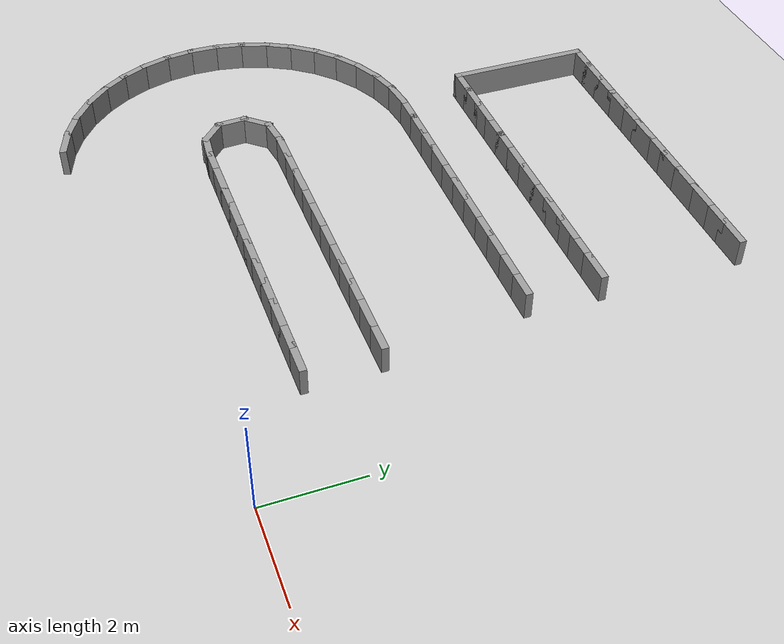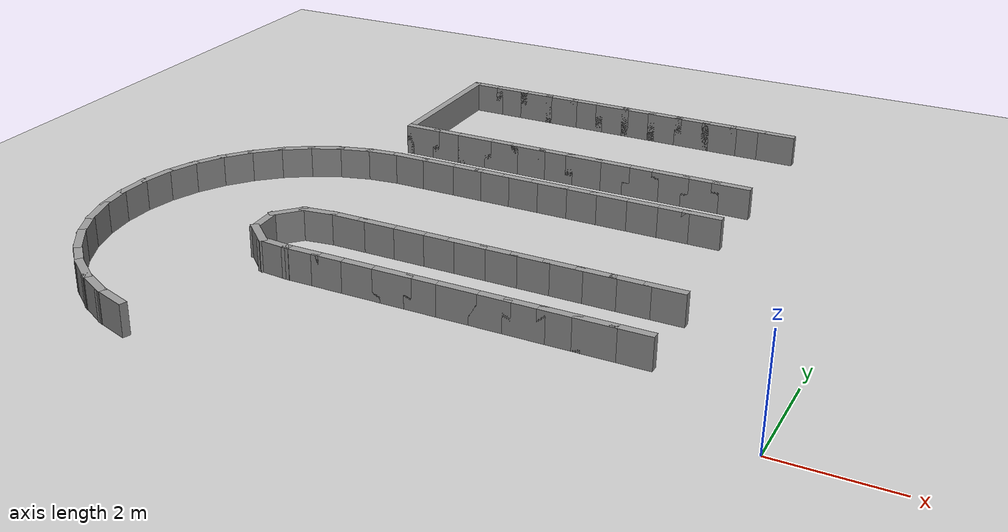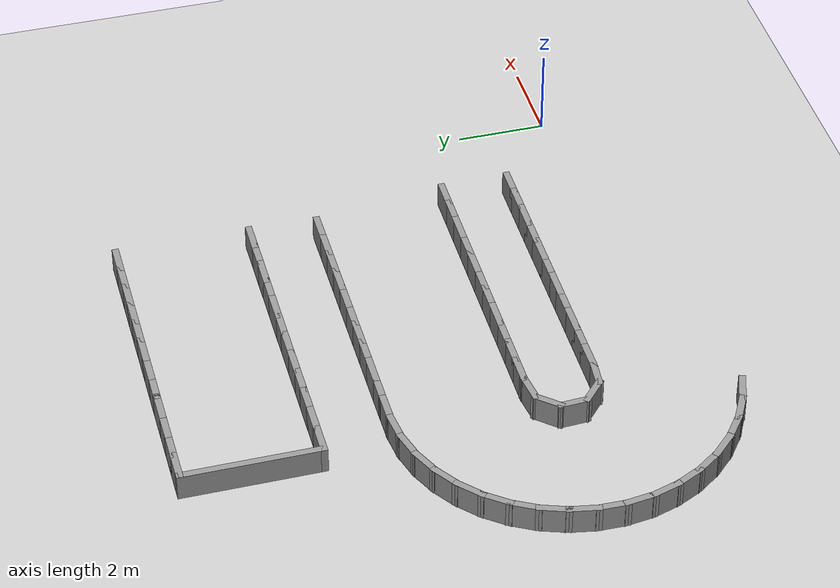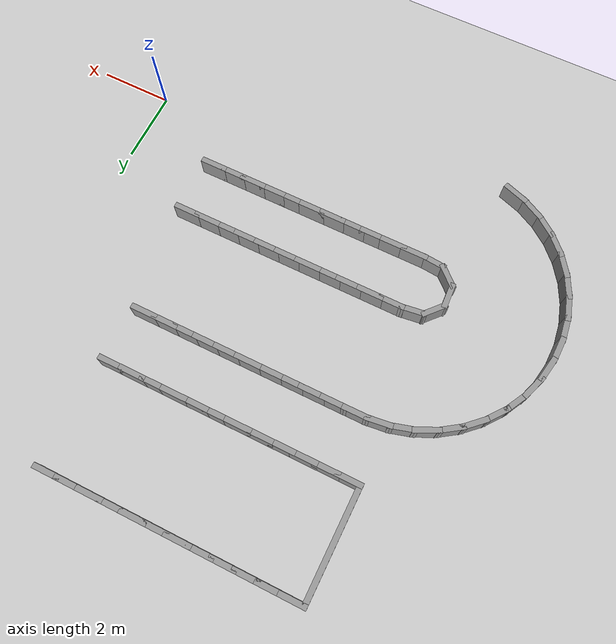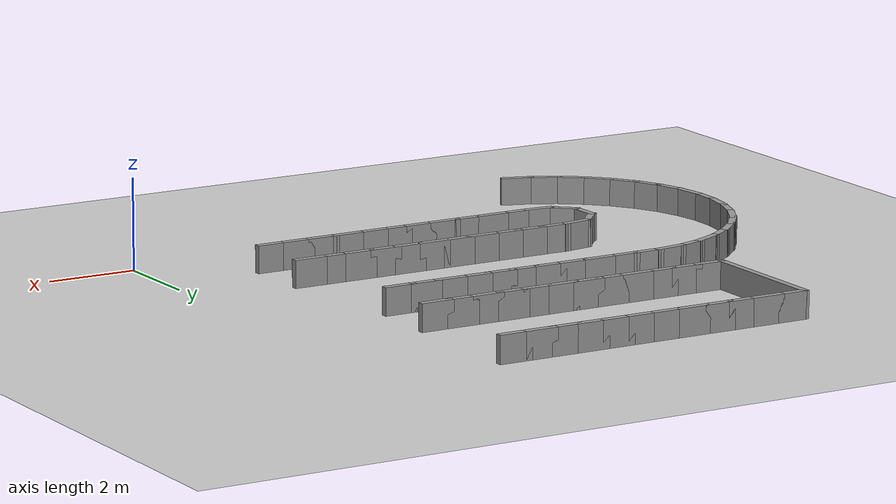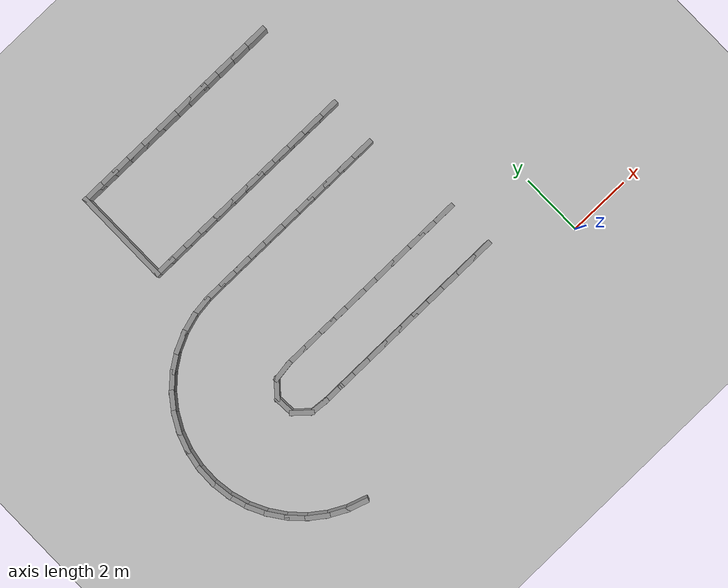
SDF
<sdf version="1.7">
 <world name="default">
  <model name="ground_plane">
   <static>1</static>
   <link name="link">
    <collision name="collision">
     <geometry><plane><normal>0 0 1</normal><size>100 100</size></plane></geometry>
     <surface><friction><ode><mu>100</mu><mu2>50</mu2></ode></friction></surface>
    </collision>
    <visual name="visual">
     <cast_shadows>0</cast_shadows>
     <geometry><plane><normal>0 0 1</normal><size>100 100</size></plane></geometry>
     <material>
      <script><uri>file://media/materials/scripts/gazebo.material</uri><name>Gazebo/Grey</name></script>
     </material>
    </visual>
   </link>
  </model>
  <model name="rand_serp_02">
   <link name="Wall_0">
    <collision name="Wall_0_Collision">
     <geometry><box><size>0.7500 0.1500 0.6000</size></box></geometry>
     <pose>0 0 0.3000 0 -0 0</pose>
    </collision>
    <visual name="Wall_0_Visual">
     <pose>0 0 0.3000 0 -0 0</pose>
     <geometry><box><size>0.7500 0.1500 0.6000</size></box></geometry>
     <material>
      <script><uri>file://media/materials/scripts/gazebo.material</uri><name>Gazebo/Grey</name></script>
      <ambient>1 1 1 1</ambient>
     </material>
    </visual>
    <pose>-9.4659 10.6147 0 0 -0 0.00000</pose>
   </link>
   <link name="Wall_1">
    <collision name="Wall_1_Collision">
     <geometry><box><size>0.7500 0.1500 0.6000</size></box></geometry>
     <pose>0 0 0.3000 0 -0 0</pose>
    </collision>
    <visual name="Wall_1_Visual">
     <pose>0 0 0.3000 0 -0 0</pose>
     <geometry><box><size>0.7500 0.1500 0.6000</size></box></geometry>
     <material>
      <script><uri>file://media/materials/scripts/gazebo.material</uri><name>Gazebo/Grey</name></script>
      <ambient>1 1 1 1</ambient>
     </material>
    </visual>
    <pose>-8.8659 10.6147 0 0 -0 0.00000</pose>
   </link>
   <link name="Wall_2">
    <collision name="Wall_2_Collision">
     <geometry><box><size>0.7500 0.1500 0.6000</size></box></geometry>
     <pose>0 0 0.3000 0 -0 0</pose>
    </collision>
    <visual name="Wall_2_Visual">
     <pose>0 0 0.3000 0 -0 0</pose>
     <geometry><box><size>0.7500 0.1500 0.6000</size></box></geometry>
     <material>
      <script><uri>file://media/materials/scripts/gazebo.material</uri><name>Gazebo/Grey</name></script>
      <ambient>1 1 1 1</ambient>
     </material>
    </visual>
    <pose>-8.2659 10.6147 0 0 -0 0.00000</pose>
   </link>
   <link name="Wall_3">
    <collision name="Wall_3_Collision">
     <geometry><box><size>0.7500 0.1500 0.6000</size></box></geometry>
     <pose>0 0 0.3000 0 -0 0</pose>
    </collision>
    <visual name="Wall_3_Visual">
     <pose>0 0 0.3000 0 -0 0</pose>
     <geometry><box><size>0.7500 0.1500 0.6000</size></box></geometry>
     <material>
      <script><uri>file://media/materials/scripts/gazebo.material</uri><name>Gazebo/Grey</name></script>
      <ambient>1 1 1 1</ambient>
     </material>
    </visual>
    <pose>-7.6659 10.6147 0 0 -0 0.00000</pose>
   </link>
   <link name="Wall_4">
    <collision name="Wall_4_Collision">
     <geometry><box><size>0.7500 0.1500 0.6000</size></box></geometry>
     <pose>0 0 0.3000 0 -0 0</pose>
    </collision>
    <visual name="Wall_4_Visual">
     <pose>0 0 0.3000 0 -0 0</pose>
     <geometry><box><size>0.7500 0.1500 0.6000</size></box></geometry>
     <material>
      <script><uri>file://media/materials/scripts/gazebo.material</uri><name>Gazebo/Grey</name></script>
      <ambient>1 1 1 1</ambient>
     </material>
    </visual>
    <pose>-7.0659 10.6147 0 0 -0 0.00000</pose>
   </link>
   <link name="Wall_5">
    <collision name="Wall_5_Collision">
     <geometry><box><size>0.7500 0.1500 0.6000</size></box></geometry>
     <pose>0 0 0.3000 0 -0 0</pose>
    </collision>
    <visual name="Wall_5_Visual">
     <pose>0 0 0.3000 0 -0 0</pose>
     <geometry><box><size>0.7500 0.1500 0.6000</size></box></geometry>
     <material>
      <script><uri>file://media/materials/scripts/gazebo.material</uri><name>Gazebo/Grey</name></script>
      <ambient>1 1 1 1</ambient>
     </material>
    </visual>
    <pose>-6.4659 10.6147 0 0 -0 0.00000</pose>
   </link>
   <link name="Wall_6">
    <collision name="Wall_6_Collision">
     <geometry><box><size>0.7500 0.1500 0.6000</size></box></geometry>
     <pose>0 0 0.3000 0 -0 0</pose>
    </collision>
    <visual name="Wall_6_Visual">
     <pose>0 0 0.3000 0 -0 0</pose>
     <geometry><box><size>0.7500 0.1500 0.6000</size></box></geometry>
     <material>
      <script><uri>file://media/materials/scripts/gazebo.material</uri><name>Gazebo/Grey</name></script>
      <ambient>1 1 1 1</ambient>
     </material>
    </visual>
    <pose>-5.8659 10.6147 0 0 -0 0.00000</pose>
   </link>
   <link name="Wall_7">
    <collision name="Wall_7_Collision">
     <geometry><box><size>0.7500 0.1500 0.6000</size></box></geometry>
     <pose>0 0 0.3000 0 -0 0</pose>
    </collision>
    <visual name="Wall_7_Visual">
     <pose>0 0 0.3000 0 -0 0</pose>
     <geometry><box><size>0.7500 0.1500 0.6000</size></box></geometry>
     <material>
      <script><uri>file://media/materials/scripts/gazebo.material</uri><name>Gazebo/Grey</name></script>
      <ambient>1 1 1 1</ambient>
     </material>
    </visual>
    <pose>-5.2659 10.6147 0 0 -0 0.00000</pose>
   </link>
   <link name="Wall_8">
    <collision name="Wall_8_Collision">
     <geometry><box><size>0.7500 0.1500 0.6000</size></box></geometry>
     <pose>0 0 0.3000 0 -0 0</pose>
    </collision>
    <visual name="Wall_8_Visual">
     <pose>0 0 0.3000 0 -0 0</pose>
     <geometry><box><size>0.7500 0.1500 0.6000</size></box></geometry>
     <material>
      <script><uri>file://media/materials/scripts/gazebo.material</uri><name>Gazebo/Grey</name></script>
      <ambient>1 1 1 1</ambient>
     </material>
    </visual>
    <pose>-4.6659 10.6147 0 0 -0 0.00000</pose>
   </link>
   <link name="Wall_9">
    <collision name="Wall_9_Collision">
     <geometry><box><size>0.7500 0.1500 0.6000</size></box></geometry>
     <pose>0 0 0.3000 0 -0 0</pose>
    </collision>
    <visual name="Wall_9_Visual">
     <pose>0 0 0.3000 0 -0 0</pose>
     <geometry><box><size>0.7500 0.1500 0.6000</size></box></geometry>
     <material>
      <script><uri>file://media/materials/scripts/gazebo.material</uri><name>Gazebo/Grey</name></script>
      <ambient>1 1 1 1</ambient>
     </material>
    </visual>
    <pose>-4.0659 10.6147 0 0 -0 0.00000</pose>
   </link>
   <link name="Wall_10">
    <collision name="Wall_10_Collision">
     <geometry><box><size>0.7500 0.1500 0.6000</size></box></geometry>
     <pose>0 0 0.3000 0 -0 0</pose>
    </collision>
    <visual name="Wall_10_Visual">
     <pose>0 0 0.3000 0 -0 0</pose>
     <geometry><box><size>0.7500 0.1500 0.6000</size></box></geometry>
     <material>
      <script><uri>file://media/materials/scripts/gazebo.material</uri><name>Gazebo/Grey</name></script>
      <ambient>1 1 1 1</ambient>
     </material>
    </visual>
    <pose>-3.4659 10.6147 0 0 -0 0.00000</pose>
   </link>
   <link name="Wall_11">
    <collision name="Wall_11_Collision">
     <geometry><box><size>0.7500 0.1500 0.6000</size></box></geometry>
     <pose>0 0 0.3000 0 -0 0</pose>
    </collision>
    <visual name="Wall_11_Visual">
     <pose>0 0 0.3000 0 -0 0</pose>
     <geometry><box><size>0.7500 0.1500 0.6000</size></box></geometry>
     <material>
      <script><uri>file://media/materials/scripts/gazebo.material</uri><name>Gazebo/Grey</name></script>
      <ambient>1 1 1 1</ambient>
     </material>
    </visual>
    <pose>-2.8659 10.6147 0 0 -0 0.00000</pose>
   </link>
   <link name="Wall_70">
    <collision name="Wall_70_Collision">
     <geometry><box><size>0.7500 0.1500 0.6000</size></box></geometry>
     <pose>0 0 0.3000 0 -0 0</pose>
    </collision>
    <visual name="Wall_70_Visual">
     <pose>0 0 0.3000 0 -0 0</pose>
     <geometry><box><size>0.7500 0.1500 0.6000</size></box></geometry>
     <material>
      <script><uri>file://media/materials/scripts/gazebo.material</uri><name>Gazebo/Grey</name></script>
      <ambient>1 1 1 1</ambient>
     </material>
    </visual>
    <pose>-2.5167 3.0475 0 0 -0 3.14159</pose>
   </link>
   <link name="Wall_71">
    <collision name="Wall_71_Collision">
     <geometry><box><size>0.7500 0.1500 0.6000</size></box></geometry>
     <pose>0 0 0.3000 0 -0 0</pose>
    </collision>
    <visual name="Wall_71_Visual">
     <pose>0 0 0.3000 0 -0 0</pose>
     <geometry><box><size>0.7500 0.1500 0.6000</size></box></geometry>
     <material>
      <script><uri>file://media/materials/scripts/gazebo.material</uri><name>Gazebo/Grey</name></script>
      <ambient>1 1 1 1</ambient>
     </material>
    </visual>
    <pose>-3.1167 3.0475 0 0 -0 3.14159</pose>
   </link>
   <link name="Wall_72">
    <collision name="Wall_72_Collision">
     <geometry><box><size>0.7500 0.1500 0.6000</size></box></geometry>
     <pose>0 0 0.3000 0 -0 0</pose>
    </collision>
    <visual name="Wall_72_Visual">
     <pose>0 0 0.3000 0 -0 0</pose>
     <geometry><box><size>0.7500 0.1500 0.6000</size></box></geometry>
     <material>
      <script><uri>file://media/materials/scripts/gazebo.material</uri><name>Gazebo/Grey</name></script>
      <ambient>1 1 1 1</ambient>
     </material>
    </visual>
    <pose>-3.7167 3.0475 0 0 -0 3.14159</pose>
   </link>
   <link name="Wall_73">
    <collision name="Wall_73_Collision">
     <geometry><box><size>0.7500 0.1500 0.6000</size></box></geometry>
     <pose>0 0 0.3000 0 -0 0</pose>
    </collision>
    <visual name="Wall_73_Visual">
     <pose>0 0 0.3000 0 -0 0</pose>
     <geometry><box><size>0.7500 0.1500 0.6000</size></box></geometry>
     <material>
      <script><uri>file://media/materials/scripts/gazebo.material</uri><name>Gazebo/Grey</name></script>
      <ambient>1 1 1 1</ambient>
     </material>
    </visual>
    <pose>-4.3167 3.0475 0 0 -0 3.14159</pose>
   </link>
   <link name="Wall_74">
    <collision name="Wall_74_Collision">
     <geometry><box><size>0.7500 0.1500 0.6000</size></box></geometry>
     <pose>0 0 0.3000 0 -0 0</pose>
    </collision>
    <visual name="Wall_74_Visual">
     <pose>0 0 0.3000 0 -0 0</pose>
     <geometry><box><size>0.7500 0.1500 0.6000</size></box></geometry>
     <material>
      <script><uri>file://media/materials/scripts/gazebo.material</uri><name>Gazebo/Grey</name></script>
      <ambient>1 1 1 1</ambient>
     </material>
    </visual>
    <pose>-4.9167 3.0475 0 0 -0 3.14159</pose>
   </link>
   <link name="Wall_75">
    <collision name="Wall_75_Collision">
     <geometry><box><size>0.7500 0.1500 0.6000</size></box></geometry>
     <pose>0 0 0.3000 0 -0 0</pose>
    </collision>
    <visual name="Wall_75_Visual">
     <pose>0 0 0.3000 0 -0 0</pose>
     <geometry><box><size>0.7500 0.1500 0.6000</size></box></geometry>
     <material>
      <script><uri>file://media/materials/scripts/gazebo.material</uri><name>Gazebo/Grey</name></script>
      <ambient>1 1 1 1</ambient>
     </material>
    </visual>
    <pose>-5.5167 3.0475 0 0 -0 3.14159</pose>
   </link>
   <link name="Wall_76">
    <collision name="Wall_76_Collision">
     <geometry><box><size>0.7500 0.1500 0.6000</size></box></geometry>
     <pose>0 0 0.3000 0 -0 0</pose>
    </collision>
    <visual name="Wall_76_Visual">
     <pose>0 0 0.3000 0 -0 0</pose>
     <geometry><box><size>0.7500 0.1500 0.6000</size></box></geometry>
     <material>
      <script><uri>file://media/materials/scripts/gazebo.material</uri><name>Gazebo/Grey</name></script>
      <ambient>1 1 1 1</ambient>
     </material>
    </visual>
    <pose>-6.1167 3.0475 0 0 -0 3.14159</pose>
   </link>
   <link name="Wall_77">
    <collision name="Wall_77_Collision">
     <geometry><box><size>0.7500 0.1500 0.6000</size></box></geometry>
     <pose>0 0 0.3000 0 -0 0</pose>
    </collision>
    <visual name="Wall_77_Visual">
     <pose>0 0 0.3000 0 -0 0</pose>
     <geometry><box><size>0.7500 0.1500 0.6000</size></box></geometry>
     <material>
      <script><uri>file://media/materials/scripts/gazebo.material</uri><name>Gazebo/Grey</name></script>
      <ambient>1 1 1 1</ambient>
     </material>
    </visual>
    <pose>-6.7167 3.0475 0 0 -0 3.14159</pose>
   </link>
   <link name="Wall_78">
    <collision name="Wall_78_Collision">
     <geometry><box><size>0.7500 0.1500 0.6000</size></box></geometry>
     <pose>0 0 0.3000 0 -0 0</pose>
    </collision>
    <visual name="Wall_78_Visual">
     <pose>0 0 0.3000 0 -0 0</pose>
     <geometry><box><size>0.7500 0.1500 0.6000</size></box></geometry>
     <material>
      <script><uri>file://media/materials/scripts/gazebo.material</uri><name>Gazebo/Grey</name></script>
      <ambient>1 1 1 1</ambient>
     </material>
    </visual>
    <pose>-7.3167 3.0475 0 0 -0 3.14159</pose>
   </link>
   <link name="Wall_79">
    <collision name="Wall_79_Collision">
     <geometry><box><size>0.7500 0.1500 0.6000</size></box></geometry>
     <pose>0 0 0.3000 0 -0 0</pose>
    </collision>
    <visual name="Wall_79_Visual">
     <pose>0 0 0.3000 0 -0 0</pose>
     <geometry><box><size>0.7500 0.1500 0.6000</size></box></geometry>
     <material>
      <script><uri>file://media/materials/scripts/gazebo.material</uri><name>Gazebo/Grey</name></script>
      <ambient>1 1 1 1</ambient>
     </material>
    </visual>
    <pose>-7.9167 3.0475 0 0 -0 3.14159</pose>
   </link>
   <link name="Wall_80">
    <collision name="Wall_80_Collision">
     <geometry><box><size>0.7500 0.1500 0.6000</size></box></geometry>
     <pose>0 0 0.3000 0 -0 0</pose>
    </collision>
    <visual name="Wall_80_Visual">
     <pose>0 0 0.3000 0 -0 0</pose>
     <geometry><box><size>0.7500 0.1500 0.6000</size></box></geometry>
     <material>
      <script><uri>file://media/materials/scripts/gazebo.material</uri><name>Gazebo/Grey</name></script>
      <ambient>1 1 1 1</ambient>
     </material>
    </visual>
    <pose>-8.5167 3.0475 0 0 -0 3.14159</pose>
   </link>
   <link name="Wall_81">
    <collision name="Wall_81_Collision">
     <geometry><box><size>0.7432 0.1500 0.6000</size></box></geometry>
     <pose>0 0 0.3000 0 -0 0</pose>
    </collision>
    <visual name="Wall_81_Visual">
     <pose>0 0 0.3000 0 -0 0</pose>
     <geometry><box><size>0.7432 0.1500 0.6000</size></box></geometry>
     <material>
      <script><uri>file://media/materials/scripts/gazebo.material</uri><name>Gazebo/Grey</name></script>
      <ambient>1 1 1 1</ambient>
     </material>
    </visual>
    <pose>-9.1106 3.0081 0 0 -0 -3.00864</pose>
   </link>
   <link name="Wall_82">
    <collision name="Wall_82_Collision">
     <geometry><box><size>0.7349 0.1500 0.6000</size></box></geometry>
     <pose>0 0 0.3000 0 -0 0</pose>
    </collision>
    <visual name="Wall_82_Visual">
     <pose>0 0 0.3000 0 -0 0</pose>
     <geometry><box><size>0.7349 0.1500 0.6000</size></box></geometry>
     <material>
      <script><uri>file://media/materials/scripts/gazebo.material</uri><name>Gazebo/Grey</name></script>
      <ambient>1 1 1 1</ambient>
     </material>
    </visual>
    <pose>-9.5988 2.7502 0 0 -0 -2.29705</pose>
   </link>
   <link name="Wall_83">
    <collision name="Wall_83_Collision">
     <geometry><box><size>0.7349 0.1500 0.6000</size></box></geometry>
     <pose>0 0 0.3000 0 -0 0</pose>
    </collision>
    <visual name="Wall_83_Visual">
     <pose>0 0 0.3000 0 -0 0</pose>
     <geometry><box><size>0.7349 0.1500 0.6000</size></box></geometry>
     <material>
      <script><uri>file://media/materials/scripts/gazebo.material</uri><name>Gazebo/Grey</name></script>
      <ambient>1 1 1 1</ambient>
     </material>
    </visual>
    <pose>-9.7776 2.2394 0 0 -0 -1.51783</pose>
   </link>
   <link name="Wall_84">
    <collision name="Wall_84_Collision">
     <geometry><box><size>0.7349 0.1500 0.6000</size></box></geometry>
     <pose>0 0 0.3000 0 -0 0</pose>
    </collision>
    <visual name="Wall_84_Visual">
     <pose>0 0 0.3000 0 -0 0</pose>
     <geometry><box><size>0.7349 0.1500 0.6000</size></box></geometry>
     <material>
      <script><uri>file://media/materials/scripts/gazebo.material</uri><name>Gazebo/Grey</name></script>
      <ambient>1 1 1 1</ambient>
     </material>
    </visual>
    <pose>-9.5460 1.7504 0 0 -0 -0.73927</pose>
   </link>
   <link name="Wall_85">
    <collision name="Wall_85_Collision">
     <geometry><box><size>0.6867 0.1500 0.6000</size></box></geometry>
     <pose>0 0 0.3000 0 -0 0</pose>
    </collision>
    <visual name="Wall_85_Visual">
     <pose>0 0 0.3000 0 -0 0</pose>
     <geometry><box><size>0.6867 0.1500 0.6000</size></box></geometry>
     <material>
      <script><uri>file://media/materials/scripts/gazebo.material</uri><name>Gazebo/Grey</name></script>
      <ambient>1 1 1 1</ambient>
     </material>
    </visual>
    <pose>-9.0626 1.5300 0 0 -0 -0.08722</pose>
   </link>
   <link name="Wall_86">
    <collision name="Wall_86_Collision">
     <geometry><box><size>0.7500 0.1500 0.6000</size></box></geometry>
     <pose>0 0 0.3000 0 -0 0</pose>
    </collision>
    <visual name="Wall_86_Visual">
     <pose>0 0 0.3000 0 -0 0</pose>
     <geometry><box><size>0.7500 0.1500 0.6000</size></box></geometry>
     <material>
      <script><uri>file://media/materials/scripts/gazebo.material</uri><name>Gazebo/Grey</name></script>
      <ambient>1 1 1 1</ambient>
     </material>
    </visual>
    <pose>-8.4952 1.5066 0 0 -0 0.00000</pose>
   </link>
   <link name="Wall_87">
    <collision name="Wall_87_Collision">
     <geometry><box><size>0.7500 0.1500 0.6000</size></box></geometry>
     <pose>0 0 0.3000 0 -0 0</pose>
    </collision>
    <visual name="Wall_87_Visual">
     <pose>0 0 0.3000 0 -0 0</pose>
     <geometry><box><size>0.7500 0.1500 0.6000</size></box></geometry>
     <material>
      <script><uri>file://media/materials/scripts/gazebo.material</uri><name>Gazebo/Grey</name></script>
      <ambient>1 1 1 1</ambient>
     </material>
    </visual>
    <pose>-7.8952 1.5066 0 0 -0 0.00000</pose>
   </link>
   <link name="Wall_88">
    <collision name="Wall_88_Collision">
     <geometry><box><size>0.7500 0.1500 0.6000</size></box></geometry>
     <pose>0 0 0.3000 0 -0 0</pose>
    </collision>
    <visual name="Wall_88_Visual">
     <pose>0 0 0.3000 0 -0 0</pose>
     <geometry><box><size>0.7500 0.1500 0.6000</size></box></geometry>
     <material>
      <script><uri>file://media/materials/scripts/gazebo.material</uri><name>Gazebo/Grey</name></script>
      <ambient>1 1 1 1</ambient>
     </material>
    </visual>
    <pose>-7.2952 1.5066 0 0 -0 0.00000</pose>
   </link>
   <link name="Wall_89">
    <collision name="Wall_89_Collision">
     <geometry><box><size>0.7500 0.1500 0.6000</size></box></geometry>
     <pose>0 0 0.3000 0 -0 0</pose>
    </collision>
    <visual name="Wall_89_Visual">
     <pose>0 0 0.3000 0 -0 0</pose>
     <geometry><box><size>0.7500 0.1500 0.6000</size></box></geometry>
     <material>
      <script><uri>file://media/materials/scripts/gazebo.material</uri><name>Gazebo/Grey</name></script>
      <ambient>1 1 1 1</ambient>
     </material>
    </visual>
    <pose>-6.6952 1.5066 0 0 -0 0.00000</pose>
   </link>
   <link name="Wall_90">
    <collision name="Wall_90_Collision">
     <geometry><box><size>0.7500 0.1500 0.6000</size></box></geometry>
     <pose>0 0 0.3000 0 -0 0</pose>
    </collision>
    <visual name="Wall_90_Visual">
     <pose>0 0 0.3000 0 -0 0</pose>
     <geometry><box><size>0.7500 0.1500 0.6000</size></box></geometry>
     <material>
      <script><uri>file://media/materials/scripts/gazebo.material</uri><name>Gazebo/Grey</name></script>
      <ambient>1 1 1 1</ambient>
     </material>
    </visual>
    <pose>-6.0952 1.5066 0 0 -0 0.00000</pose>
   </link>
   <link name="Wall_91">
    <collision name="Wall_91_Collision">
     <geometry><box><size>0.7500 0.1500 0.6000</size></box></geometry>
     <pose>0 0 0.3000 0 -0 0</pose>
    </collision>
    <visual name="Wall_91_Visual">
     <pose>0 0 0.3000 0 -0 0</pose>
     <geometry><box><size>0.7500 0.1500 0.6000</size></box></geometry>
     <material>
      <script><uri>file://media/materials/scripts/gazebo.material</uri><name>Gazebo/Grey</name></script>
      <ambient>1 1 1 1</ambient>
     </material>
    </visual>
    <pose>-5.4952 1.5066 0 0 -0 0.00000</pose>
   </link>
   <link name="Wall_92">
    <collision name="Wall_92_Collision">
     <geometry><box><size>0.7500 0.1500 0.6000</size></box></geometry>
     <pose>0 0 0.3000 0 -0 0</pose>
    </collision>
    <visual name="Wall_92_Visual">
     <pose>0 0 0.3000 0 -0 0</pose>
     <geometry><box><size>0.7500 0.1500 0.6000</size></box></geometry>
     <material>
      <script><uri>file://media/materials/scripts/gazebo.material</uri><name>Gazebo/Grey</name></script>
      <ambient>1 1 1 1</ambient>
     </material>
    </visual>
    <pose>-4.8952 1.5066 0 0 -0 0.00000</pose>
   </link>
   <link name="Wall_93">
    <collision name="Wall_93_Collision">
     <geometry><box><size>0.7500 0.1500 0.6000</size></box></geometry>
     <pose>0 0 0.3000 0 -0 0</pose>
    </collision>
    <visual name="Wall_93_Visual">
     <pose>0 0 0.3000 0 -0 0</pose>
     <geometry><box><size>0.7500 0.1500 0.6000</size></box></geometry>
     <material>
      <script><uri>file://media/materials/scripts/gazebo.material</uri><name>Gazebo/Grey</name></script>
      <ambient>1 1 1 1</ambient>
     </material>
    </visual>
    <pose>-4.2952 1.5066 0 0 -0 0.00000</pose>
   </link>
   <link name="Wall_94">
    <collision name="Wall_94_Collision">
     <geometry><box><size>0.7500 0.1500 0.6000</size></box></geometry>
     <pose>0 0 0.3000 0 -0 0</pose>
    </collision>
    <visual name="Wall_94_Visual">
     <pose>0 0 0.3000 0 -0 0</pose>
     <geometry><box><size>0.7500 0.1500 0.6000</size></box></geometry>
     <material>
      <script><uri>file://media/materials/scripts/gazebo.material</uri><name>Gazebo/Grey</name></script>
      <ambient>1 1 1 1</ambient>
     </material>
    </visual>
    <pose>-3.6952 1.5066 0 0 -0 0.00000</pose>
   </link>
   <link name="Wall_95">
    <collision name="Wall_95_Collision">
     <geometry><box><size>0.7500 0.1500 0.6000</size></box></geometry>
     <pose>0 0 0.3000 0 -0 0</pose>
    </collision>
    <visual name="Wall_95_Visual">
     <pose>0 0 0.3000 0 -0 0</pose>
     <geometry><box><size>0.7500 0.1500 0.6000</size></box></geometry>
     <material>
      <script><uri>file://media/materials/scripts/gazebo.material</uri><name>Gazebo/Grey</name></script>
      <ambient>1 1 1 1</ambient>
     </material>
    </visual>
    <pose>-3.0952 1.5066 0 0 -0 0.00000</pose>
   </link>
   <link name="Wall_96">
    <collision name="Wall_96_Collision">
     <geometry><box><size>0.7500 0.1500 0.6000</size></box></geometry>
     <pose>0 0 0.3000 0 -0 0</pose>
    </collision>
    <visual name="Wall_96_Visual">
     <pose>0 0 0.3000 0 -0 0</pose>
     <geometry><box><size>0.7500 0.1500 0.6000</size></box></geometry>
     <material>
      <script><uri>file://media/materials/scripts/gazebo.material</uri><name>Gazebo/Grey</name></script>
      <ambient>1 1 1 1</ambient>
     </material>
    </visual>
    <pose>-2.4952 1.5066 0 0 -0 0.00000</pose>
   </link>
   <link name="Wall_202">
    <collision name="Wall_202_Collision">
     <geometry><box><size>0.7500 0.1500 0.6000</size></box></geometry>
     <pose>0 0 0.3000 0 -0 0</pose>
    </collision>
    <visual name="Wall_202_Visual">
     <pose>0 0 0.3000 0 -0 0</pose>
     <geometry><box><size>0.7500 0.1500 0.6000</size></box></geometry>
     <material>
      <script><uri>file://media/materials/scripts/gazebo.material</uri><name>Gazebo/Grey</name></script>
      <ambient>1 1 1 1</ambient>
     </material>
    </visual>
    <pose>-9.4659 7.6015 0 0 -0 0.00000</pose>
   </link>
   <link name="Wall_203">
    <collision name="Wall_203_Collision">
     <geometry><box><size>0.7500 0.1500 0.6000</size></box></geometry>
     <pose>0 0 0.3000 0 -0 0</pose>
    </collision>
    <visual name="Wall_203_Visual">
     <pose>0 0 0.3000 0 -0 0</pose>
     <geometry><box><size>0.7500 0.1500 0.6000</size></box></geometry>
     <material>
      <script><uri>file://media/materials/scripts/gazebo.material</uri><name>Gazebo/Grey</name></script>
      <ambient>1 1 1 1</ambient>
     </material>
    </visual>
    <pose>-8.8659 7.6015 0 0 -0 0.00000</pose>
   </link>
   <link name="Wall_204">
    <collision name="Wall_204_Collision">
     <geometry><box><size>0.7500 0.1500 0.6000</size></box></geometry>
     <pose>0 0 0.3000 0 -0 0</pose>
    </collision>
    <visual name="Wall_204_Visual">
     <pose>0 0 0.3000 0 -0 0</pose>
     <geometry><box><size>0.7500 0.1500 0.6000</size></box></geometry>
     <material>
      <script><uri>file://media/materials/scripts/gazebo.material</uri><name>Gazebo/Grey</name></script>
      <ambient>1 1 1 1</ambient>
     </material>
    </visual>
    <pose>-8.2659 7.6015 0 0 -0 0.00000</pose>
   </link>
   <link name="Wall_205">
    <collision name="Wall_205_Collision">
     <geometry><box><size>0.7500 0.1500 0.6000</size></box></geometry>
     <pose>0 0 0.3000 0 -0 0</pose>
    </collision>
    <visual name="Wall_205_Visual">
     <pose>0 0 0.3000 0 -0 0</pose>
     <geometry><box><size>0.7500 0.1500 0.6000</size></box></geometry>
     <material>
      <script><uri>file://media/materials/scripts/gazebo.material</uri><name>Gazebo/Grey</name></script>
      <ambient>1 1 1 1</ambient>
     </material>
    </visual>
    <pose>-7.6659 7.6015 0 0 -0 0.00000</pose>
   </link>
   <link name="Wall_206">
    <collision name="Wall_206_Collision">
     <geometry><box><size>0.7500 0.1500 0.6000</size></box></geometry>
     <pose>0 0 0.3000 0 -0 0</pose>
    </collision>
    <visual name="Wall_206_Visual">
     <pose>0 0 0.3000 0 -0 0</pose>
     <geometry><box><size>0.7500 0.1500 0.6000</size></box></geometry>
     <material>
      <script><uri>file://media/materials/scripts/gazebo.material</uri><name>Gazebo/Grey</name></script>
      <ambient>1 1 1 1</ambient>
     </material>
    </visual>
    <pose>-7.0659 7.6015 0 0 -0 0.00000</pose>
   </link>
   <link name="Wall_207">
    <collision name="Wall_207_Collision">
     <geometry><box><size>0.7500 0.1500 0.6000</size></box></geometry>
     <pose>0 0 0.3000 0 -0 0</pose>
    </collision>
    <visual name="Wall_207_Visual">
     <pose>0 0 0.3000 0 -0 0</pose>
     <geometry><box><size>0.7500 0.1500 0.6000</size></box></geometry>
     <material>
      <script><uri>file://media/materials/scripts/gazebo.material</uri><name>Gazebo/Grey</name></script>
      <ambient>1 1 1 1</ambient>
     </material>
    </visual>
    <pose>-6.4659 7.6015 0 0 -0 0.00000</pose>
   </link>
   <link name="Wall_208">
    <collision name="Wall_208_Collision">
     <geometry><box><size>0.7500 0.1500 0.6000</size></box></geometry>
     <pose>0 0 0.3000 0 -0 0</pose>
    </collision>
    <visual name="Wall_208_Visual">
     <pose>0 0 0.3000 0 -0 0</pose>
     <geometry><box><size>0.7500 0.1500 0.6000</size></box></geometry>
     <material>
      <script><uri>file://media/materials/scripts/gazebo.material</uri><name>Gazebo/Grey</name></script>
      <ambient>1 1 1 1</ambient>
     </material>
    </visual>
    <pose>-5.8659 7.6015 0 0 -0 0.00000</pose>
   </link>
   <link name="Wall_209">
    <collision name="Wall_209_Collision">
     <geometry><box><size>0.7500 0.1500 0.6000</size></box></geometry>
     <pose>0 0 0.3000 0 -0 0</pose>
    </collision>
    <visual name="Wall_209_Visual">
     <pose>0 0 0.3000 0 -0 0</pose>
     <geometry><box><size>0.7500 0.1500 0.6000</size></box></geometry>
     <material>
      <script><uri>file://media/materials/scripts/gazebo.material</uri><name>Gazebo/Grey</name></script>
      <ambient>1 1 1 1</ambient>
     </material>
    </visual>
    <pose>-5.2659 7.6015 0 0 -0 0.00000</pose>
   </link>
   <link name="Wall_210">
    <collision name="Wall_210_Collision">
     <geometry><box><size>0.7500 0.1500 0.6000</size></box></geometry>
     <pose>0 0 0.3000 0 -0 0</pose>
    </collision>
    <visual name="Wall_210_Visual">
     <pose>0 0 0.3000 0 -0 0</pose>
     <geometry><box><size>0.7500 0.1500 0.6000</size></box></geometry>
     <material>
      <script><uri>file://media/materials/scripts/gazebo.material</uri><name>Gazebo/Grey</name></script>
      <ambient>1 1 1 1</ambient>
     </material>
    </visual>
    <pose>-4.6659 7.6015 0 0 -0 0.00000</pose>
   </link>
   <link name="Wall_211">
    <collision name="Wall_211_Collision">
     <geometry><box><size>0.7500 0.1500 0.6000</size></box></geometry>
     <pose>0 0 0.3000 0 -0 0</pose>
    </collision>
    <visual name="Wall_211_Visual">
     <pose>0 0 0.3000 0 -0 0</pose>
     <geometry><box><size>0.7500 0.1500 0.6000</size></box></geometry>
     <material>
      <script><uri>file://media/materials/scripts/gazebo.material</uri><name>Gazebo/Grey</name></script>
      <ambient>1 1 1 1</ambient>
     </material>
    </visual>
    <pose>-4.0659 7.6015 0 0 -0 0.00000</pose>
   </link>
   <link name="Wall_212">
    <collision name="Wall_212_Collision">
     <geometry><box><size>0.7500 0.1500 0.6000</size></box></geometry>
     <pose>0 0 0.3000 0 -0 0</pose>
    </collision>
    <visual name="Wall_212_Visual">
     <pose>0 0 0.3000 0 -0 0</pose>
     <geometry><box><size>0.7500 0.1500 0.6000</size></box></geometry>
     <material>
      <script><uri>file://media/materials/scripts/gazebo.material</uri><name>Gazebo/Grey</name></script>
      <ambient>1 1 1 1</ambient>
     </material>
    </visual>
    <pose>-3.4659 7.6015 0 0 -0 0.00000</pose>
   </link>
   <link name="Wall_213">
    <collision name="Wall_213_Collision">
     <geometry><box><size>0.7500 0.1500 0.6000</size></box></geometry>
     <pose>0 0 0.3000 0 -0 0</pose>
    </collision>
    <visual name="Wall_213_Visual">
     <pose>0 0 0.3000 0 -0 0</pose>
     <geometry><box><size>0.7500 0.1500 0.6000</size></box></geometry>
     <material>
      <script><uri>file://media/materials/scripts/gazebo.material</uri><name>Gazebo/Grey</name></script>
      <ambient>1 1 1 1</ambient>
     </material>
    </visual>
    <pose>-2.8659 7.6015 0 0 -0 0.00000</pose>
   </link>
   <link name="Wall_257">
    <collision name="Wall_257_Collision">
     <geometry><box><size>0.7500 0.1500 0.6000</size></box></geometry>
     <pose>0 0 0.3000 0 -0 0</pose>
    </collision>
    <visual name="Wall_257_Visual">
     <pose>0 0 0.3000 0 -0 0</pose>
     <geometry><box><size>0.7500 0.1500 0.6000</size></box></geometry>
     <material>
      <script><uri>file://media/materials/scripts/gazebo.material</uri><name>Gazebo/Grey</name></script>
      <ambient>1 1 1 1</ambient>
     </material>
    </visual>
    <pose>-2.9222 6.0606 0 0 -0 3.14159</pose>
   </link>
   <link name="Wall_258">
    <collision name="Wall_258_Collision">
     <geometry><box><size>0.7500 0.1500 0.6000</size></box></geometry>
     <pose>0 0 0.3000 0 -0 0</pose>
    </collision>
    <visual name="Wall_258_Visual">
     <pose>0 0 0.3000 0 -0 0</pose>
     <geometry><box><size>0.7500 0.1500 0.6000</size></box></geometry>
     <material>
      <script><uri>file://media/materials/scripts/gazebo.material</uri><name>Gazebo/Grey</name></script>
      <ambient>1 1 1 1</ambient>
     </material>
    </visual>
    <pose>-3.5222 6.0606 0 0 -0 3.14159</pose>
   </link>
   <link name="Wall_259">
    <collision name="Wall_259_Collision">
     <geometry><box><size>0.7500 0.1500 0.6000</size></box></geometry>
     <pose>0 0 0.3000 0 -0 0</pose>
    </collision>
    <visual name="Wall_259_Visual">
     <pose>0 0 0.3000 0 -0 0</pose>
     <geometry><box><size>0.7500 0.1500 0.6000</size></box></geometry>
     <material>
      <script><uri>file://media/materials/scripts/gazebo.material</uri><name>Gazebo/Grey</name></script>
      <ambient>1 1 1 1</ambient>
     </material>
    </visual>
    <pose>-4.1222 6.0606 0 0 -0 3.14159</pose>
   </link>
   <link name="Wall_260">
    <collision name="Wall_260_Collision">
     <geometry><box><size>0.7500 0.1500 0.6000</size></box></geometry>
     <pose>0 0 0.3000 0 -0 0</pose>
    </collision>
    <visual name="Wall_260_Visual">
     <pose>0 0 0.3000 0 -0 0</pose>
     <geometry><box><size>0.7500 0.1500 0.6000</size></box></geometry>
     <material>
      <script><uri>file://media/materials/scripts/gazebo.material</uri><name>Gazebo/Grey</name></script>
      <ambient>1 1 1 1</ambient>
     </material>
    </visual>
    <pose>-4.7222 6.0606 0 0 -0 3.14159</pose>
   </link>
   <link name="Wall_261">
    <collision name="Wall_261_Collision">
     <geometry><box><size>0.7500 0.1500 0.6000</size></box></geometry>
     <pose>0 0 0.3000 0 -0 0</pose>
    </collision>
    <visual name="Wall_261_Visual">
     <pose>0 0 0.3000 0 -0 0</pose>
     <geometry><box><size>0.7500 0.1500 0.6000</size></box></geometry>
     <material>
      <script><uri>file://media/materials/scripts/gazebo.material</uri><name>Gazebo/Grey</name></script>
      <ambient>1 1 1 1</ambient>
     </material>
    </visual>
    <pose>-5.3222 6.0606 0 0 -0 3.14159</pose>
   </link>
   <link name="Wall_262">
    <collision name="Wall_262_Collision">
     <geometry><box><size>0.7500 0.1500 0.6000</size></box></geometry>
     <pose>0 0 0.3000 0 -0 0</pose>
    </collision>
    <visual name="Wall_262_Visual">
     <pose>0 0 0.3000 0 -0 0</pose>
     <geometry><box><size>0.7500 0.1500 0.6000</size></box></geometry>
     <material>
      <script><uri>file://media/materials/scripts/gazebo.material</uri><name>Gazebo/Grey</name></script>
      <ambient>1 1 1 1</ambient>
     </material>
    </visual>
    <pose>-5.9222 6.0606 0 0 -0 3.14159</pose>
   </link>
   <link name="Wall_263">
    <collision name="Wall_263_Collision">
     <geometry><box><size>0.7500 0.1500 0.6000</size></box></geometry>
     <pose>0 0 0.3000 0 -0 0</pose>
    </collision>
    <visual name="Wall_263_Visual">
     <pose>0 0 0.3000 0 -0 0</pose>
     <geometry><box><size>0.7500 0.1500 0.6000</size></box></geometry>
     <material>
      <script><uri>file://media/materials/scripts/gazebo.material</uri><name>Gazebo/Grey</name></script>
      <ambient>1 1 1 1</ambient>
     </material>
    </visual>
    <pose>-6.5222 6.0606 0 0 -0 3.14159</pose>
   </link>
   <link name="Wall_264">
    <collision name="Wall_264_Collision">
     <geometry><box><size>0.7500 0.1500 0.6000</size></box></geometry>
     <pose>0 0 0.3000 0 -0 0</pose>
    </collision>
    <visual name="Wall_264_Visual">
     <pose>0 0 0.3000 0 -0 0</pose>
     <geometry><box><size>0.7500 0.1500 0.6000</size></box></geometry>
     <material>
      <script><uri>file://media/materials/scripts/gazebo.material</uri><name>Gazebo/Grey</name></script>
      <ambient>1 1 1 1</ambient>
     </material>
    </visual>
    <pose>-7.1222 6.0606 0 0 -0 3.14159</pose>
   </link>
   <link name="Wall_265">
    <collision name="Wall_265_Collision">
     <geometry><box><size>0.7500 0.1500 0.6000</size></box></geometry>
     <pose>0 0 0.3000 0 -0 0</pose>
    </collision>
    <visual name="Wall_265_Visual">
     <pose>0 0 0.3000 0 -0 0</pose>
     <geometry><box><size>0.7500 0.1500 0.6000</size></box></geometry>
     <material>
      <script><uri>file://media/materials/scripts/gazebo.material</uri><name>Gazebo/Grey</name></script>
      <ambient>1 1 1 1</ambient>
     </material>
    </visual>
    <pose>-7.7222 6.0606 0 0 -0 3.14159</pose>
   </link>
   <link name="Wall_266">
    <collision name="Wall_266_Collision">
     <geometry><box><size>0.7500 0.1500 0.6000</size></box></geometry>
     <pose>0 0 0.3000 0 -0 0</pose>
    </collision>
    <visual name="Wall_266_Visual">
     <pose>0 0 0.3000 0 -0 0</pose>
     <geometry><box><size>0.7500 0.1500 0.6000</size></box></geometry>
     <material>
      <script><uri>file://media/materials/scripts/gazebo.material</uri><name>Gazebo/Grey</name></script>
      <ambient>1 1 1 1</ambient>
     </material>
    </visual>
    <pose>-8.3222 6.0606 0 0 -0 3.14159</pose>
   </link>
   <link name="Wall_267">
    <collision name="Wall_267_Collision">
     <geometry><box><size>0.7500 0.1500 0.6000</size></box></geometry>
     <pose>0 0 0.3000 0 -0 0</pose>
    </collision>
    <visual name="Wall_267_Visual">
     <pose>0 0 0.3000 0 -0 0</pose>
     <geometry><box><size>0.7500 0.1500 0.6000</size></box></geometry>
     <material>
      <script><uri>file://media/materials/scripts/gazebo.material</uri><name>Gazebo/Grey</name></script>
      <ambient>1 1 1 1</ambient>
     </material>
    </visual>
    <pose>-8.9222 6.0589 0 0 -0 -3.13602</pose>
   </link>
   <link name="Wall_268">
    <collision name="Wall_268_Collision">
     <geometry><box><size>0.7494 0.1500 0.6000</size></box></geometry>
     <pose>0 0 0.3000 0 -0 0</pose>
    </collision>
    <visual name="Wall_268_Visual">
     <pose>0 0 0.3000 0 -0 0</pose>
     <geometry><box><size>0.7494 0.1500 0.6000</size></box></geometry>
     <material>
      <script><uri>file://media/materials/scripts/gazebo.material</uri><name>Gazebo/Grey</name></script>
      <ambient>1 1 1 1</ambient>
     </material>
    </visual>
    <pose>-9.5197 6.0212 0 0 -0 -3.02103</pose>
   </link>
   <link name="Wall_269">
    <collision name="Wall_269_Collision">
     <geometry><box><size>0.7494 0.1500 0.6000</size></box></geometry>
     <pose>0 0 0.3000 0 -0 0</pose>
    </collision>
    <visual name="Wall_269_Visual">
     <pose>0 0 0.3000 0 -0 0</pose>
     <geometry><box><size>0.7494 0.1500 0.6000</size></box></geometry>
     <material>
      <script><uri>file://media/materials/scripts/gazebo.material</uri><name>Gazebo/Grey</name></script>
      <ambient>1 1 1 1</ambient>
     </material>
    </visual>
    <pose>-10.1053 5.9026 0 0 -0 -2.86244</pose>
   </link>
   <link name="Wall_270">
    <collision name="Wall_270_Collision">
     <geometry><box><size>0.7494 0.1500 0.6000</size></box></geometry>
     <pose>0 0 0.3000 0 -0 0</pose>
    </collision>
    <visual name="Wall_270_Visual">
     <pose>0 0 0.3000 0 -0 0</pose>
     <geometry><box><size>0.7494 0.1500 0.6000</size></box></geometry>
     <material>
      <script><uri>file://media/materials/scripts/gazebo.material</uri><name>Gazebo/Grey</name></script>
      <ambient>1 1 1 1</ambient>
     </material>
    </visual>
    <pose>-10.6649 5.6930 0 0 -0 -2.70385</pose>
   </link>
   <link name="Wall_271">
    <collision name="Wall_271_Collision">
     <geometry><box><size>0.7494 0.1500 0.6000</size></box></geometry>
     <pose>0 0 0.3000 0 -0 0</pose>
    </collision>
    <visual name="Wall_271_Visual">
     <pose>0 0 0.3000 0 -0 0</pose>
     <geometry><box><size>0.7494 0.1500 0.6000</size></box></geometry>
     <material>
      <script><uri>file://media/materials/scripts/gazebo.material</uri><name>Gazebo/Grey</name></script>
      <ambient>1 1 1 1</ambient>
     </material>
    </visual>
    <pose>-11.1843 5.3976 0 0 -0 -2.54517</pose>
   </link>
   <link name="Wall_272">
    <collision name="Wall_272_Collision">
     <geometry><box><size>0.7494 0.1500 0.6000</size></box></geometry>
     <pose>0 0 0.3000 0 -0 0</pose>
    </collision>
    <visual name="Wall_272_Visual">
     <pose>0 0 0.3000 0 -0 0</pose>
     <geometry><box><size>0.7494 0.1500 0.6000</size></box></geometry>
     <material>
      <script><uri>file://media/materials/scripts/gazebo.material</uri><name>Gazebo/Grey</name></script>
      <ambient>1 1 1 1</ambient>
     </material>
    </visual>
    <pose>-11.6505 5.0239 0 0 -0 -2.38655</pose>
   </link>
   <link name="Wall_273">
    <collision name="Wall_273_Collision">
     <geometry><box><size>0.7494 0.1500 0.6000</size></box></geometry>
     <pose>0 0 0.3000 0 -0 0</pose>
    </collision>
    <visual name="Wall_273_Visual">
     <pose>0 0 0.3000 0 -0 0</pose>
     <geometry><box><size>0.7494 0.1500 0.6000</size></box></geometry>
     <material>
      <script><uri>file://media/materials/scripts/gazebo.material</uri><name>Gazebo/Grey</name></script>
      <ambient>1 1 1 1</ambient>
     </material>
    </visual>
    <pose>-12.0518 4.5812 0 0 -0 -2.22796</pose>
   </link>
   <link name="Wall_274">
    <collision name="Wall_274_Collision">
     <geometry><box><size>0.7494 0.1500 0.6000</size></box></geometry>
     <pose>0 0 0.3000 0 -0 0</pose>
    </collision>
    <visual name="Wall_274_Visual">
     <pose>0 0 0.3000 0 -0 0</pose>
     <geometry><box><size>0.7494 0.1500 0.6000</size></box></geometry>
     <material>
      <script><uri>file://media/materials/scripts/gazebo.material</uri><name>Gazebo/Grey</name></script>
      <ambient>1 1 1 1</ambient>
     </material>
    </visual>
    <pose>-12.3782 4.0807 0 0 -0 -2.06938</pose>
   </link>
   <link name="Wall_275">
    <collision name="Wall_275_Collision">
     <geometry><box><size>0.7494 0.1500 0.6000</size></box></geometry>
     <pose>0 0 0.3000 0 -0 0</pose>
    </collision>
    <visual name="Wall_275_Visual">
     <pose>0 0 0.3000 0 -0 0</pose>
     <geometry><box><size>0.7494 0.1500 0.6000</size></box></geometry>
     <material>
      <script><uri>file://media/materials/scripts/gazebo.material</uri><name>Gazebo/Grey</name></script>
      <ambient>1 1 1 1</ambient>
     </material>
    </visual>
    <pose>-12.6215 3.5349 0 0 -0 -1.91079</pose>
   </link>
   <link name="Wall_276">
    <collision name="Wall_276_Collision">
     <geometry><box><size>0.7494 0.1500 0.6000</size></box></geometry>
     <pose>0 0 0.3000 0 -0 0</pose>
    </collision>
    <visual name="Wall_276_Visual">
     <pose>0 0 0.3000 0 -0 0</pose>
     <geometry><box><size>0.7494 0.1500 0.6000</size></box></geometry>
     <material>
      <script><uri>file://media/materials/scripts/gazebo.material</uri><name>Gazebo/Grey</name></script>
      <ambient>1 1 1 1</ambient>
     </material>
    </visual>
    <pose>-12.7755 2.9576 0 0 -0 -1.75220</pose>
   </link>
   <link name="Wall_277">
    <collision name="Wall_277_Collision">
     <geometry><box><size>0.7494 0.1500 0.6000</size></box></geometry>
     <pose>0 0 0.3000 0 -0 0</pose>
    </collision>
    <visual name="Wall_277_Visual">
     <pose>0 0 0.3000 0 -0 0</pose>
     <geometry><box><size>0.7494 0.1500 0.6000</size></box></geometry>
     <material>
      <script><uri>file://media/materials/scripts/gazebo.material</uri><name>Gazebo/Grey</name></script>
      <ambient>1 1 1 1</ambient>
     </material>
    </visual>
    <pose>-12.8364 2.3633 0 0 -0 -1.59361</pose>
   </link>
   <link name="Wall_278">
    <collision name="Wall_278_Collision">
     <geometry><box><size>0.7494 0.1500 0.6000</size></box></geometry>
     <pose>0 0 0.3000 0 -0 0</pose>
    </collision>
    <visual name="Wall_278_Visual">
     <pose>0 0 0.3000 0 -0 0</pose>
     <geometry><box><size>0.7494 0.1500 0.6000</size></box></geometry>
     <material>
      <script><uri>file://media/materials/scripts/gazebo.material</uri><name>Gazebo/Grey</name></script>
      <ambient>1 1 1 1</ambient>
     </material>
    </visual>
    <pose>-12.8027 1.7667 0 0 -0 -1.43502</pose>
   </link>
   <link name="Wall_279">
    <collision name="Wall_279_Collision">
     <geometry><box><size>0.7494 0.1500 0.6000</size></box></geometry>
     <pose>0 0 0.3000 0 -0 0</pose>
    </collision>
    <visual name="Wall_279_Visual">
     <pose>0 0 0.3000 0 -0 0</pose>
     <geometry><box><size>0.7494 0.1500 0.6000</size></box></geometry>
     <material>
      <script><uri>file://media/materials/scripts/gazebo.material</uri><name>Gazebo/Grey</name></script>
      <ambient>1 1 1 1</ambient>
     </material>
    </visual>
    <pose>-12.6751 1.1830 0 0 -0 -1.27643</pose>
   </link>
   <link name="Wall_280">
    <collision name="Wall_280_Collision">
     <geometry><box><size>0.7494 0.1500 0.6000</size></box></geometry>
     <pose>0 0 0.3000 0 -0 0</pose>
    </collision>
    <visual name="Wall_280_Visual">
     <pose>0 0 0.3000 0 -0 0</pose>
     <geometry><box><size>0.7494 0.1500 0.6000</size></box></geometry>
     <material>
      <script><uri>file://media/materials/scripts/gazebo.material</uri><name>Gazebo/Grey</name></script>
      <ambient>1 1 1 1</ambient>
     </material>
    </visual>
    <pose>-12.4570 0.6267 0 0 -0 -1.11785</pose>
   </link>
   <link name="Wall_281">
    <collision name="Wall_281_Collision">
     <geometry><box><size>0.7494 0.1500 0.6000</size></box></geometry>
     <pose>0 0 0.3000 0 -0 0</pose>
    </collision>
    <visual name="Wall_281_Visual">
     <pose>0 0 0.3000 0 -0 0</pose>
     <geometry><box><size>0.7494 0.1500 0.6000</size></box></geometry>
     <material>
      <script><uri>file://media/materials/scripts/gazebo.material</uri><name>Gazebo/Grey</name></script>
      <ambient>1 1 1 1</ambient>
     </material>
    </visual>
    <pose>-12.1538 0.1119 0 0 -0 -0.95926</pose>
   </link>
   <link name="Wall_282">
    <collision name="Wall_282_Collision">
     <geometry><box><size>0.7494 0.1500 0.6000</size></box></geometry>
     <pose>0 0 0.3000 0 -0 0</pose>
    </collision>
    <visual name="Wall_282_Visual">
     <pose>0 0 0.3000 0 -0 0</pose>
     <geometry><box><size>0.7494 0.1500 0.6000</size></box></geometry>
     <material>
      <script><uri>file://media/materials/scripts/gazebo.material</uri><name>Gazebo/Grey</name></script>
      <ambient>1 1 1 1</ambient>
     </material>
    </visual>
    <pose>-11.7732 -0.3486 0 0 -0 -0.80067</pose>
   </link>
   <link name="Wall_283">
    <collision name="Wall_283_Collision">
     <geometry><box><size>0.7494 0.1500 0.6000</size></box></geometry>
     <pose>0 0 0.3000 0 -0 0</pose>
    </collision>
    <visual name="Wall_283_Visual">
     <pose>0 0 0.3000 0 -0 0</pose>
     <geometry><box><size>0.7494 0.1500 0.6000</size></box></geometry>
     <material>
      <script><uri>file://media/materials/scripts/gazebo.material</uri><name>Gazebo/Grey</name></script>
      <ambient>1 1 1 1</ambient>
     </material>
    </visual>
    <pose>-11.3245 -0.7432 0 0 -0 -0.64208</pose>
   </link>
   <link name="Wall_284">
    <collision name="Wall_284_Collision">
     <geometry><box><size>0.7493 0.1500 0.6000</size></box></geometry>
     <pose>0 0 0.3000 0 -0 0</pose>
    </collision>
    <visual name="Wall_284_Visual">
     <pose>0 0 0.3000 0 -0 0</pose>
     <geometry><box><size>0.7493 0.1500 0.6000</size></box></geometry>
     <material>
      <script><uri>file://media/materials/scripts/gazebo.material</uri><name>Gazebo/Grey</name></script>
      <ambient>1 1 1 1</ambient>
     </material>
    </visual>
    <pose>-10.8192 -1.0619 0 0 -0 -0.48349</pose>
   </link>
   <link name="Wall_285">
    <collision name="Wall_285_Collision">
     <geometry><box><size>0.7493 0.1500 0.6000</size></box></geometry>
     <pose>0 0 0.3000 0 -0 0</pose>
    </collision>
    <visual name="Wall_285_Visual">
     <pose>0 0 0.3000 0 -0 0</pose>
     <geometry><box><size>0.7493 0.1500 0.6000</size></box></geometry>
     <material>
      <script><uri>file://media/materials/scripts/gazebo.material</uri><name>Gazebo/Grey</name></script>
      <ambient>1 1 1 1</ambient>
     </material>
    </visual>
    <pose>-10.2699 -1.2969 0 0 -0 -0.32490</pose>
   </link>
   <link name="Wall_404">
    <collision name="Wall_404_Collision">
     <geometry><box><size>3.1632 0.1500 0.6000</size></box></geometry>
     <pose>0 0 0.3000 0 -0 0</pose>
    </collision>
    <visual name="Wall_404_Visual">
     <pose>0 0 0.3000 0 -0 0</pose>
     <geometry><box><size>3.1632 0.1500 0.6000</size></box></geometry>
     <material>
      <script><uri>file://media/materials/scripts/gazebo.material</uri><name>Gazebo/Grey</name></script>
      <ambient>1 1 1 1</ambient>
     </material>
    </visual>
    <pose>-9.7659 9.1081 0 0 -0 1.57080</pose>
   </link>
   <static>1</static>
  </model>
 </world>
</sdf>
